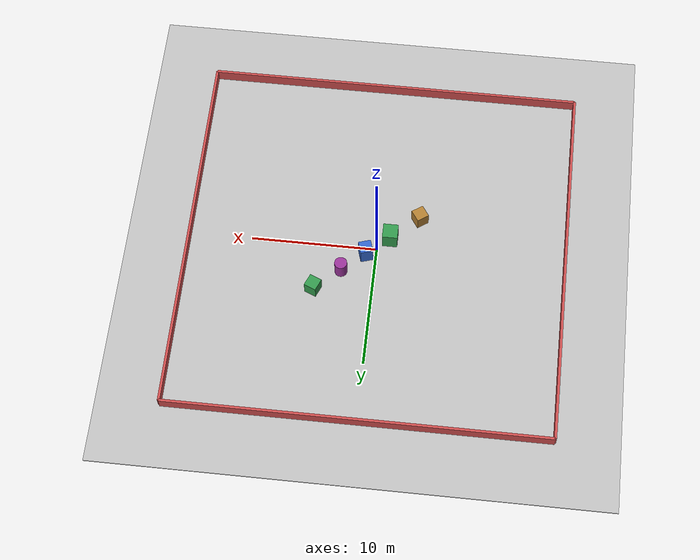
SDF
<?xml version="1.0" ?>
<sdf version="1.6">
  <world name="ego_ground_world">

    <physics type="ode">
      <max_step_size>0.001</max_step_size>
      <real_time_factor>1.0</real_time_factor>
      <real_time_update_rate>1000</real_time_update_rate>
    </physics>

    <scene>
      <ambient>0.6 0.6 0.6 1</ambient>
      <background>0.7 0.7 0.75 1</background>
      <shadows>false</shadows>
    </scene>

    <light type="directional" name="sun">
      <cast_shadows>false</cast_shadows>
      <pose>0 0 12 0 0 0</pose>
      <diffuse>0.9 0.9 0.9 1</diffuse>
      <specular>0.1 0.1 0.1 1</specular>
      <attenuation>
        <range>100</range>
        <constant>0.9</constant>
        <linear>0.01</linear>
        <quadratic>0.001</quadratic>
      </attenuation>
      <direction>-0.3 0.2 -0.9</direction>
    </light>

    <!-- ground -->
    <model name="ground">
      <static>true</static>
      <pose>0 0 -0.05 0 0 0</pose>
      <link name="ground_link">
        <collision name="ground_collision">
          <geometry>
            <box>
              <size>40 40 0.1</size>
            </box>
          </geometry>
          <surface>
            <friction>
              <ode>
                <mu>1.0</mu>
                <mu2>1.0</mu2>
              </ode>
            </friction>
          </surface>
        </collision>
        <visual name="ground_visual">
          <geometry>
            <box>
              <size>40 40 0.1</size>
            </box>
          </geometry>
          <material>
            <ambient>0.6 0.6 0.6 1</ambient>
            <diffuse>0.75 0.75 0.75 1</diffuse>
          </material>
        </visual>
      </link>
    </model>

    <!-- arena walls (30 x 30 m, walls are also detectable obstacles) -->
    <model name="wall_north">
      <static>true</static>
      <pose>0 15 0.5 0 0 0</pose>
      <link name="link">
        <collision name="collision">
          <geometry><box><size>30 0.2 1.0</size></box></geometry>
        </collision>
        <visual name="visual">
          <geometry><box><size>30 0.2 1.0</size></box></geometry>
          <material><ambient>0.8 0.3 0.3 1</ambient><diffuse>0.8 0.3 0.3 1</diffuse></material>
        </visual>
      </link>
    </model>
    <model name="wall_south">
      <static>true</static>
      <pose>0 -15 0.5 0 0 0</pose>
      <link name="link">
        <collision name="collision">
          <geometry><box><size>30 0.2 1.0</size></box></geometry>
        </collision>
        <visual name="visual">
          <geometry><box><size>30 0.2 1.0</size></box></geometry>
          <material><ambient>0.8 0.3 0.3 1</ambient><diffuse>0.8 0.3 0.3 1</diffuse></material>
        </visual>
      </link>
    </model>
    <model name="wall_east">
      <static>true</static>
      <pose>15 0 0.5 0 0 0</pose>
      <link name="link">
        <collision name="collision">
          <geometry><box><size>0.2 30 1.0</size></box></geometry>
        </collision>
        <visual name="visual">
          <geometry><box><size>0.2 30 1.0</size></box></geometry>
          <material><ambient>0.8 0.3 0.3 1</ambient><diffuse>0.8 0.3 0.3 1</diffuse></material>
        </visual>
      </link>
    </model>
    <model name="wall_west">
      <static>true</static>
      <pose>-15 0 0.5 0 0 0</pose>
      <link name="link">
        <collision name="collision">
          <geometry><box><size>0.2 30 1.0</size></box></geometry>
        </collision>
        <visual name="visual">
          <geometry><box><size>0.2 30 1.0</size></box></geometry>
          <material><ambient>0.8 0.3 0.3 1</ambient><diffuse>0.8 0.3 0.3 1</diffuse></material>
        </visual>
      </link>
    </model>

    <!-- obstacles blocking the direct path start(-8,-6) -> goal(8,6) -->
    <model name="box_1">
      <static>true</static>
      <pose>-1.0 -1.0 0.75 0 0 0</pose>
      <link name="link">
        <collision name="collision">
          <geometry><box><size>1.2 1.2 1.5</size></box></geometry>
        </collision>
        <visual name="visual">
          <geometry><box><size>1.2 1.2 1.5</size></box></geometry>
          <material><ambient>0.2 0.6 0.3 1</ambient><diffuse>0.2 0.6 0.3 1</diffuse></material>
        </visual>
      </link>
    </model>
    <model name="box_2">
      <static>true</static>
      <pose>0.8 0.6 0.75 0 0 0.3</pose>
      <link name="link">
        <collision name="collision">
          <geometry><box><size>1.0 1.0 1.5</size></box></geometry>
        </collision>
        <visual name="visual">
          <geometry><box><size>1.0 1.0 1.5</size></box></geometry>
          <material><ambient>0.2 0.4 0.8 1</ambient><diffuse>0.2 0.4 0.8 1</diffuse></material>
        </visual>
      </link>
    </model>
    <model name="box_3">
      <static>true</static>
      <pose>-3.2 -3.0 0.6 0 0 0.6</pose>
      <link name="link">
        <collision name="collision">
          <geometry><box><size>1.0 1.0 1.2</size></box></geometry>
        </collision>
        <visual name="visual">
          <geometry><box><size>1.0 1.0 1.2</size></box></geometry>
          <material><ambient>0.7 0.5 0.2 1</ambient><diffuse>0.7 0.5 0.2 1</diffuse></material>
        </visual>
      </link>
    </model>
    <model name="cylinder_1">
      <static>true</static>
      <pose>2.6 2.2 0.7 0 0 0</pose>
      <link name="link">
        <collision name="collision">
          <geometry><cylinder><radius>0.5</radius><length>1.4</length></cylinder></geometry>
        </collision>
        <visual name="visual">
          <geometry><cylinder><radius>0.5</radius><length>1.4</length></cylinder></geometry>
          <material><ambient>0.6 0.2 0.6 1</ambient><diffuse>0.6 0.2 0.6 1</diffuse></material>
        </visual>
      </link>
    </model>
    <model name="box_4">
      <static>true</static>
      <pose>4.6 4.0 0.6 0 0 -0.4</pose>
      <link name="link">
        <collision name="collision">
          <geometry><box><size>1.0 1.0 1.2</size></box></geometry>
        </collision>
        <visual name="visual">
          <geometry><box><size>1.0 1.0 1.2</size></box></geometry>
          <material><ambient>0.2 0.6 0.3 1</ambient><diffuse>0.2 0.6 0.3 1</diffuse></material>
        </visual>
      </link>
    </model>

  </world>
</sdf>
